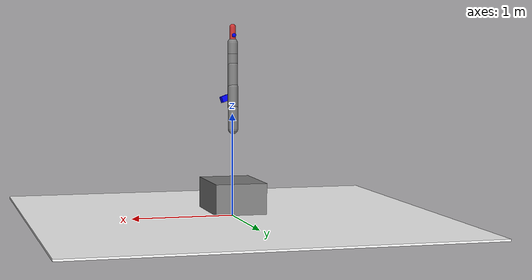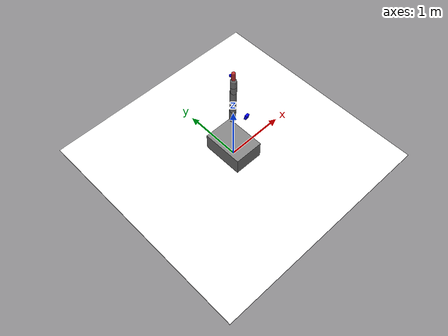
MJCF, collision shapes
<mujoco model="Omni_Kinova_Cobot">
  <compiler angle="radian" autolimits="true" />
  <option integrator="implicitfast" iterations="1" ls_iterations="0" cone="elliptic" impratio="10" timestep="0.002" />

  <visual>
    <global offwidth="1920" offheight="1080" />
    <scale forcewidth="0.1" contactwidth="0.3" contactheight="0.1" framelength="0.5" framewidth="0.01" />
  </visual>

  <default>
    <default class="visual">
      <geom type="mesh" contype="0" conaffinity="0" group="2" rgba="0.75294 0.75294 0.75294 1" />
    </default>
    <default class="collision">
      <geom type="capsule" group="3" contype="2" conaffinity="1" />
    </default>
    <default class="environment">
      <geom contype="1" conaffinity="2" />
    </default>
    <default class="large_actuator">
      <position kp="2000" kv="100" forcerange="-105 105" />
    </default>
    <default class="small_actuator">
      <position kp="500" kv="50" forcerange="-52 52" />
    </default>
    <site size="0.001" rgba="0.5 0.5 0.5 0.3" group="4" />
  </default>

  <asset>
    <mesh name="base_link" file="kinova_gen3/assets/base_link.stl" />
    <mesh name="shoulder_link" file="kinova_gen3/assets/shoulder_link.stl" />
    <mesh name="half_arm_1_link" file="kinova_gen3/assets/half_arm_1_link.stl" />
    <mesh name="half_arm_2_link" file="kinova_gen3/assets/half_arm_2_link.stl" />
    <mesh name="forearm_link" file="kinova_gen3/assets/forearm_link.stl" />
    <mesh name="spherical_wrist_1_link" file="kinova_gen3/assets/spherical_wrist_1_link.stl" />
    <mesh name="spherical_wrist_2_link" file="kinova_gen3/assets/spherical_wrist_2_link.stl" />
    <mesh name="bracelet_with_vision_link" file="kinova_gen3/assets/bracelet_with_vision_link.stl" />
    <mesh name="cobot_base_link" file="cobot_base/assets/base_link.stl" />
  </asset>

  <worldbody>
    <light pos="0 0 1.5" dir="0 0 -1" directional="true" />
    <geom name="floor" type="box" size="2 2 0.01" pos="0 0 -0.01" rgba="1 1 1 1" />

    <body name="omni_chassis" pos="0 0 0.1">
      <geom type="mesh" mesh="cobot_base_link" mass="20.0" rgba="0.2 0.2 0.2 0.5" euler="1.571 0 0" contype="0" conaffinity="0" />
      <geom type="box" size="0.25 0.35 0.15" pos="0 0 0.1" class="collision" />

      <body name="base_link" pos="0 .025 0.469">
        <geom class="visual" mesh="base_link" />
                <!--the above is 70 degree rotation x, -80 degree rotation z in world frame-->
          <camera name="basecam"
            pos="0.0158 -0.2815 0.5664"
            quat="0.6224 0.51 -0.3038 -0.51"
            mode="fixed"
            resolution="1280 720"
            sensorsize="1280 720"
            focalpixel="612.29 612.05"
            principalpixel="0.14 -4.72"
          />
        <site name="basecam_site" type="box" pos="0.0158 -0.2815 0.5664" quat="0.6224 0.51 -0.3038 -0.51" size="0.02 0.03 0.04" rgba="0 0 1 1" group="1" />

        <body name="shoulder_link" pos="0 0 0.15643" quat="0 1 0 0">
          <joint name="joint_1" />
          <geom class="visual" mesh="shoulder_link" name="shoulder_link_visual"/>
          <body name="half_arm_1_link" pos="0 0.005375 -0.12838" quat="1 1 0 0">
            <joint name="joint_2" range="-2.24 2.24" />
            <geom class="visual" mesh="half_arm_1_link" name="half_arm_1_link_visual"/>
            <geom class="collision" size="0.05" fromto="0 0 0 0 -0.2 0" name="half_arm_1_link_collision" />
            <body name="half_arm_2_link" pos="0 -0.21038 -0.006375" quat="1 -1 0 0">
              <joint name="joint_3" />
              <geom class="visual" mesh="half_arm_2_link" name="half_arm_2_link_visual"/>
              <geom class="collision" type="capsule" size="0.05" fromto="0 0 0 0 0 -0.2" name="half_arm_2_link_collision" />
              <body name="forearm_link" pos="0 0.006375 -0.21038" quat="1 1 0 0">
                <joint name="joint_4" range="-2.57 2.57" />
                <geom class="visual" mesh="forearm_link" name="forearm_link_visual"/>
                <geom class="collision" type="capsule" size="0.05" fromto="0 0 0 0 -0.2 0" name="forearm_link_collision" />
                <body name="spherical_wrist_1_link" pos="0 -0.20843 -0.006375" quat="1 -1 0 0">
                  <joint name="joint_5" />
                  <geom class="visual" mesh="spherical_wrist_1_link" name="spherical_wrist_1_link_visual"/>
                  <geom class="collision" type="capsule" size="0.05" fromto="0 0 0 0 0  -0.1" name="spherical_wrist_1_link_collision" />
                  <body name="spherical_wrist_2_link" pos="0 0.00017505 -0.10593" quat="1 1 0 0">
                    <joint name="joint_6" range="-2.09 2.09" />
                    <geom class="visual" mesh="spherical_wrist_2_link" name="spherical_wrist_2_link_visual"/>
                    <geom class="collision" type="capsule" size="0.05" fromto="0 0 0 0 -0.1 0 " name="spherical_wrist_2_link_collision" />
                    <body name="end_effector" pos="0 -0.10593 -0.00017505" quat="1 -1 0 0">
                      <joint name="joint_7" />
                      <geom class="visual" mesh="bracelet_with_vision_link" rgba="1 0 0 1" />
                      <geom name="ee_collision"
                        type="capsule"
                        size="0.03"
                        fromto="0 0 0 0 0 -0.15"
                        rgba="0.8 0.2 0.2 1"
                        friction="1.5 0.005 0.0001"
                        solimp="0.9 0.95 0.001"
                        solref="0.01 1.0"
                        condim="4"
                        />
                      <site name="pinch_site" pos="0 0 -0.15" quat="0 1 0 0" group="3" />
                      <camera name="handcam"
                        pos="0.0 -0.06 -0.07"
                        quat="0 0 0 1"
                        mode="fixed"
                        resolution="1280 720"
                        sensorsize="1280 720"
                        focalpixel="1297.67 1298.63"
                        principalpixel="-19.09 121.72"
                      />
                      <site name="handcam_site" pos="0.0 -0.06 -0.07" quat="0 0 0 1" size="0.02" rgba="0 0 1 1" group="1" />
                    </body>
                  </body>
                </body>
              </body>
            </body>
          </body>
        </body>
      </body>
    </body>
    <body name="target_visual" mocap="true">
      <geom type="sphere" size="0.03" rgba="0 1 0 0.5" contype="0" conaffinity="0"/>
    </body>
    <camera name="sideview" pos="4.0 0 0.8" quat="0.5 0.5 0.5 0.5" />
    <camera name="topdown" pos="0 0 3.0" quat="1 0 0 0" />
  </worldbody>

  <actuator>
    <position class="large_actuator" name="joint_1" joint="joint_1" />
    <position class="large_actuator" name="joint_2" joint="joint_2" ctrlrange="-2.24 2.24" />
    <position class="large_actuator" name="joint_3" joint="joint_3" />
    <position class="large_actuator" name="joint_4" joint="joint_4" ctrlrange="-2.57 2.57" />
    <position class="small_actuator" name="joint_5" joint="joint_5" />
    <position class="small_actuator" name="joint_6" joint="joint_6" ctrlrange="-2.09 2.09" />
    <position class="small_actuator" name="joint_7" joint="joint_7" />
  </actuator>

  <keyframe>
    <key name="home" qpos="0 0.26 3.14 -2.26 0 0.95 1.57" />
  </keyframe>
</mujoco>
